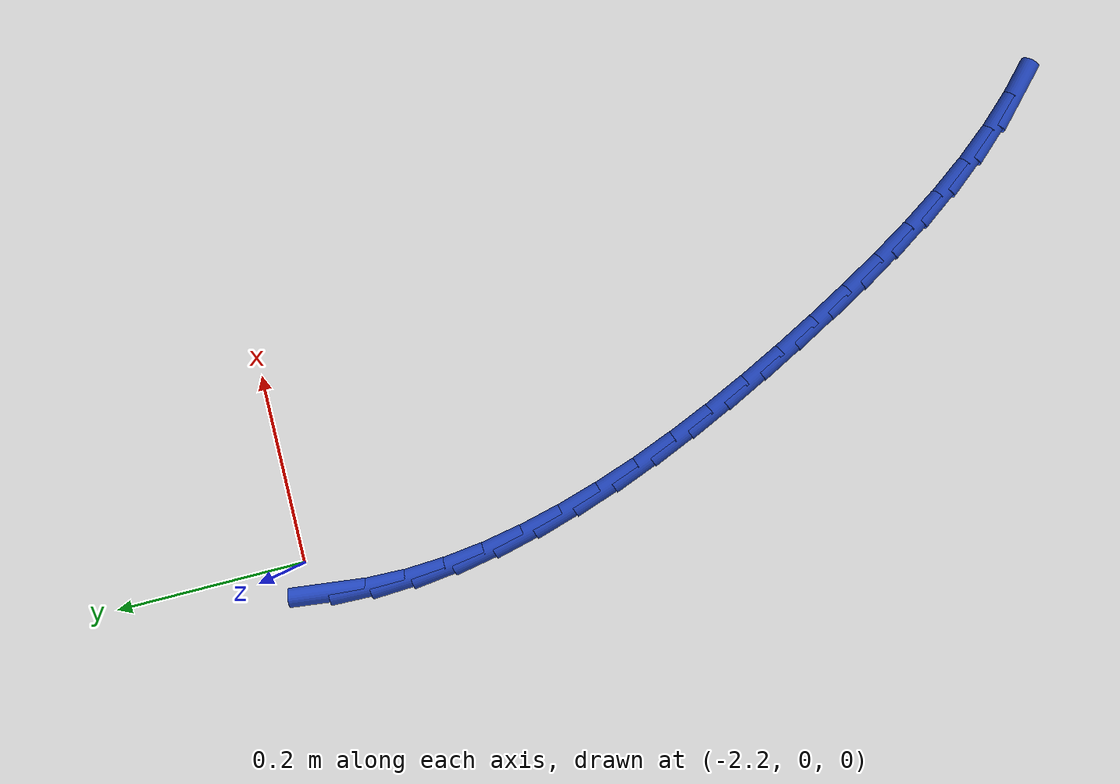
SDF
<sdf version="1.6">
 <world name="default">
  <model name="ground_plane">
   <static>1</static>
   <link name="link">
    <collision name="collision">
     <geometry><plane><normal>0 0 1</normal><size>100 100</size></plane></geometry>
     <surface><friction><ode><mu>100</mu><mu2>50</mu2></ode></friction></surface>
    </collision>
    <visual name="visual">
     <cast_shadows>0</cast_shadows>
     <geometry><plane><normal>0 0 1</normal><size>100 100</size></plane></geometry>
     <material>
      <script><uri>file://media/materials/scripts/gazebo.material</uri><name>Gazebo/WhiteGlow</name></script>
     </material>
    </visual>
   </link>
  </model>
  <model name="line">
   <link name="link_80">
    <pose>-2.2351424718844726 -0.01791530302333704 0.01 0 1.57 1.456207721410758</pose>
    <collision name="collision">
     <geometry><cylinder><radius>0.01</radius><length>0.08</length></cylinder></geometry>
    </collision>
    <visual name="visual">
     <material>
      <script><name>Gazebo/Blue</name><uri>file://media/materials/scripts/gazebo.material</uri></script>
     </material>
     <geometry><cylinder><radius>0.01</radius><length>0.08</length></cylinder></geometry>
    </visual>
   </link>
   <link name="link_81">
    <pose>-2.2399151850533783 -0.059383696820994744 0.01 0 1.57 1.5445282037850865</pose>
    <collision name="collision">
     <geometry><cylinder><radius>0.01</radius><length>0.08</length></cylinder></geometry>
    </collision>
    <visual name="visual">
     <material>
      <script><name>Gazebo/Blue</name><uri>file://media/materials/scripts/gazebo.material</uri></script>
     </material>
     <geometry><cylinder><radius>0.01</radius><length>0.08</length></cylinder></geometry>
    </visual>
   </link>
   <link name="link_82">
    <pose>-2.2410280339220083 -0.10173894602932239 0.01 0 1.57 -1.5176860795600424</pose>
    <collision name="collision">
     <geometry><cylinder><radius>0.01</radius><length>0.08</length></cylinder></geometry>
    </collision>
    <visual name="visual">
     <material>
      <script><name>Gazebo/Blue</name><uri>file://media/materials/scripts/gazebo.material</uri></script>
     </material>
     <geometry><cylinder><radius>0.01</radius><length>0.08</length></cylinder></geometry>
    </visual>
   </link>
   <link name="link_83">
    <pose>-2.2387370665686386 -0.14483445065876996 0.01 0 1.57 -1.446946403528091</pose>
    <collision name="collision">
     <geometry><cylinder><radius>0.01</radius><length>0.08</length></cylinder></geometry>
    </collision>
    <visual name="visual">
     <material>
      <script><name>Gazebo/Blue</name><uri>file://media/materials/scripts/gazebo.material</uri></script>
     </material>
     <geometry><cylinder><radius>0.01</radius><length>0.08</length></cylinder></geometry>
    </visual>
   </link>
   <link name="link_84">
    <pose>-2.233298331071546 -0.18852361071978993 0.01 0 1.57 -1.384246684867755</pose>
    <collision name="collision">
     <geometry><cylinder><radius>0.01</radius><length>0.08</length></cylinder></geometry>
    </collision>
    <visual name="visual">
     <material>
      <script><name>Gazebo/Blue</name><uri>file://media/materials/scripts/gazebo.material</uri></script>
     </material>
     <geometry><cylinder><radius>0.01</radius><length>0.08</length></cylinder></geometry>
    </visual>
   </link>
   <link name="link_85">
    <pose>-2.2249678755090057 -0.23265982622283388 0.01 0 1.57 -1.328849567010096</pose>
    <collision name="collision">
     <geometry><cylinder><radius>0.01</radius><length>0.08</length></cylinder></geometry>
    </collision>
    <visual name="visual">
     <material>
      <script><name>Gazebo/Blue</name><uri>file://media/materials/scripts/gazebo.material</uri></script>
     </material>
     <geometry><cylinder><radius>0.01</radius><length>0.08</length></cylinder></geometry>
    </visual>
   </link>
   <link name="link_86">
    <pose>-2.214001747959294 -0.27709649717835333 0.01 0 1.57 -1.279985832267244</pose>
    <collision name="collision">
     <geometry><cylinder><radius>0.01</radius><length>0.08</length></cylinder></geometry>
    </collision>
    <visual name="visual">
     <material>
      <script><name>Gazebo/Blue</name><uri>file://media/materials/scripts/gazebo.material</uri></script>
     </material>
     <geometry><cylinder><radius>0.01</radius><length>0.08</length></cylinder></geometry>
    </visual>
   </link>
   <link name="link_87">
    <pose>-2.200655996500688 -0.32168702359680096 0.01 0 1.57 -1.2369187536315462</pose>
    <collision name="collision">
     <geometry><cylinder><radius>0.01</radius><length>0.08</length></cylinder></geometry>
    </collision>
    <visual name="visual">
     <material>
      <script><name>Gazebo/Blue</name><uri>file://media/materials/scripts/gazebo.material</uri></script>
     </material>
     <geometry><cylinder><radius>0.01</radius><length>0.08</length></cylinder></geometry>
    </visual>
   </link>
   <link name="link_88">
    <pose>-2.1851866692114625 -0.3662848054886264 0.01 0 1.57 -1.1989780417414144</pose>
    <collision name="collision">
     <geometry><cylinder><radius>0.01</radius><length>0.08</length></cylinder></geometry>
    </collision>
    <visual name="visual">
     <material>
      <script><name>Gazebo/Blue</name><uri>file://media/materials/scripts/gazebo.material</uri></script>
     </material>
     <geometry><cylinder><radius>0.01</radius><length>0.08</length></cylinder></geometry>
    </visual>
   </link>
   <link name="link_89">
    <pose>-2.1678498141698945 -0.41074324286428243 0.01 0 1.57 -1.1655743572428217</pose>
    <collision name="collision">
     <geometry><cylinder><radius>0.01</radius><length>0.08</length></cylinder></geometry>
    </collision>
    <visual name="visual">
     <material>
      <script><name>Gazebo/Blue</name><uri>file://media/materials/scripts/gazebo.material</uri></script>
     </material>
     <geometry><cylinder><radius>0.01</radius><length>0.08</length></cylinder></geometry>
    </visual>
   </link>
   <link name="link_90">
    <pose>-2.1489014794542607 -0.4549157357342206 0.01 0 1.57 -1.136202604313997</pose>
    <collision name="collision">
     <geometry><cylinder><radius>0.01</radius><length>0.08</length></cylinder></geometry>
    </collision>
    <visual name="visual">
     <material>
      <script><name>Gazebo/Blue</name><uri>file://media/materials/scripts/gazebo.material</uri></script>
     </material>
     <geometry><cylinder><radius>0.01</radius><length>0.08</length></cylinder></geometry>
    </visual>
   </link>
   <link name="link_91">
    <pose>-2.128597713142836 -0.4986556841088924 0.01 0 1.57 -1.1104395393298883</pose>
    <collision name="collision">
     <geometry><cylinder><radius>0.01</radius><length>0.08</length></cylinder></geometry>
    </collision>
    <visual name="visual">
     <material>
      <script><name>Gazebo/Blue</name><uri>file://media/materials/scripts/gazebo.material</uri></script>
     </material>
     <geometry><cylinder><radius>0.01</radius><length>0.08</length></cylinder></geometry>
    </visual>
   </link>
   <link name="link_92">
    <pose>-2.107194563313897 -0.5418164879987502 0.01 0 1.57 -1.0879392030309556</pose>
    <collision name="collision">
     <geometry><cylinder><radius>0.01</radius><length>0.08</length></cylinder></geometry>
    </collision>
    <visual name="visual">
     <material>
      <script><name>Gazebo/Blue</name><uri>file://media/materials/scripts/gazebo.material</uri></script>
     </material>
     <geometry><cylinder><radius>0.01</radius><length>0.08</length></cylinder></geometry>
    </visual>
   </link>
   <link name="link_93">
    <pose>-2.084948078045721 -0.5842515474142442 0.01 0 1.57 -1.0682261151151187</pose>
    <collision name="collision">
     <geometry><cylinder><radius>0.01</radius><length>0.08</length></cylinder></geometry>
    </collision>
    <visual name="visual">
     <material>
      <script><name>Gazebo/Blue</name><uri>file://media/materials/scripts/gazebo.material</uri></script>
     </material>
     <geometry><cylinder><radius>0.01</radius><length>0.08</length></cylinder></geometry>
    </visual>
   </link>
   <link name="link_94">
    <pose>-2.062104466672744 -0.6258122517291025 0.01 0 1.57 -1.0464372898030727</pose>
    <collision name="collision">
     <geometry><cylinder><radius>0.01</radius><length>0.08</length></cylinder></geometry>
    </collision>
    <visual name="visual">
     <material>
      <script><name>Gazebo/Blue</name><uri>file://media/materials/scripts/gazebo.material</uri></script>
     </material>
     <geometry><cylinder><radius>0.01</radius><length>0.08</length></cylinder></geometry>
    </visual>
   </link>
   <link name="link_95">
    <pose>-2.03868541884764 -0.6663041076795021 0.01 0 1.57 -1.017591166908187</pose>
    <collision name="collision">
     <geometry><cylinder><radius>0.01</radius><length>0.08</length></cylinder></geometry>
    </collision>
    <visual name="visual">
     <material>
      <script><name>Gazebo/Blue</name><uri>file://media/materials/scripts/gazebo.material</uri></script>
     </material>
     <geometry><cylinder><radius>0.01</radius><length>0.08</length></cylinder></geometry>
    </visual>
   </link>
   <link name="link_96">
    <pose>-2.014489084279789 -0.7054869395825318 0.01 0 1.57 -0.9810051014647585</pose>
    <collision name="collision">
     <geometry><cylinder><radius>0.01</radius><length>0.08</length></cylinder></geometry>
    </collision>
    <visual name="visual">
     <material>
      <script><name>Gazebo/Blue</name><uri>file://media/materials/scripts/gazebo.material</uri></script>
     </material>
     <geometry><cylinder><radius>0.01</radius><length>0.08</length></cylinder></geometry>
    </visual>
   </link>
   <link name="link_97">
    <pose>-1.9893039698835977 -0.7431186011624855 0.01 0 1.57 -0.9361642037639525</pose>
    <collision name="collision">
     <geometry><cylinder><radius>0.01</radius><length>0.08</length></cylinder></geometry>
    </collision>
    <visual name="visual">
     <material>
      <script><name>Gazebo/Blue</name><uri>file://media/materials/scripts/gazebo.material</uri></script>
     </material>
     <geometry><cylinder><radius>0.01</radius><length>0.08</length></cylinder></geometry>
    </visual>
   </link>
   <link name="link_98">
    <pose>-1.962918582573478 -0.7789569461436603 0.01 0 1.57 -0.88258654387111</pose>
    <collision name="collision">
     <geometry><cylinder><radius>0.01</radius><length>0.08</length></cylinder></geometry>
    </collision>
    <visual name="visual">
     <material>
      <script><name>Gazebo/Blue</name><uri>file://media/materials/scripts/gazebo.material</uri></script>
     </material>
     <geometry><cylinder><radius>0.01</radius><length>0.08</length></cylinder></geometry>
    </visual>
   </link>
   <link name="link_99">
    <pose>-1.9351214292638383 -0.8127598282503516 0.01 0 1.57 -0.8199211040909373</pose>
    <collision name="collision">
     <geometry><cylinder><radius>0.01</radius><length>0.08</length></cylinder></geometry>
    </collision>
    <visual name="visual">
     <material>
      <script><name>Gazebo/Blue</name><uri>file://media/materials/scripts/gazebo.material</uri></script>
     </material>
     <geometry><cylinder><radius>0.01</radius><length>0.08</length></cylinder></geometry>
    </visual>
   </link>
   <link name="link_100">
    <pose>-1.9057010168690869 -0.8442851012068552 0.01 0 1.57 -0.748083570542131</pose>
    <collision name="collision">
     <geometry><cylinder><radius>0.01</radius><length>0.08</length></cylinder></geometry>
    </collision>
    <visual name="visual">
     <material>
      <script><name>Gazebo/Blue</name><uri>file://media/materials/scripts/gazebo.material</uri></script>
     </material>
     <geometry><cylinder><radius>0.01</radius><length>0.08</length></cylinder></geometry>
    </visual>
   </link>
  </model>
 </world>
</sdf>
